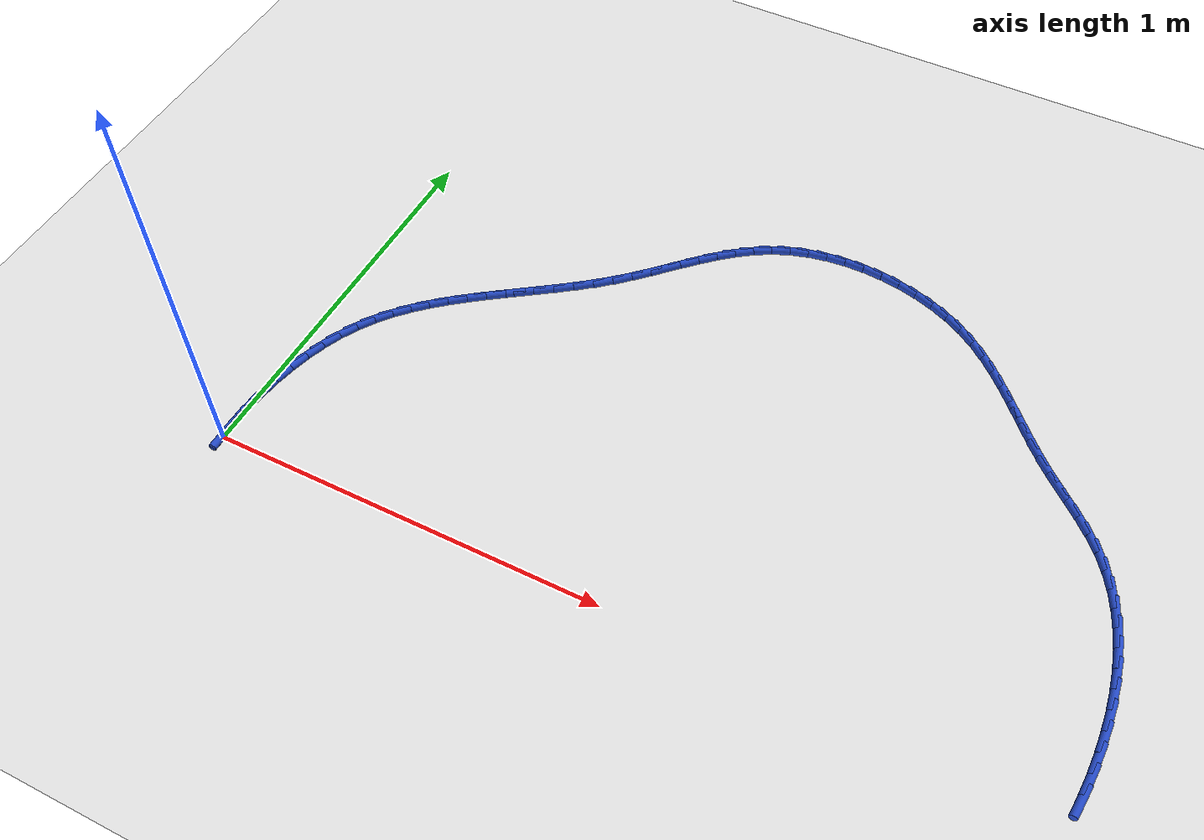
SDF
<sdf version="1.6">
 <world name="default">
  <model name="ground_plane">
   <static>1</static>
   <link name="link">
    <collision name="collision">
     <geometry><plane><normal>0 0 1</normal><size>100 100</size></plane></geometry>
     <surface><friction><ode><mu>100</mu><mu2>50</mu2></ode></friction></surface>
    </collision>
    <visual name="visual">
     <cast_shadows>0</cast_shadows>
     <geometry><plane><normal>0 0 1</normal><size>100 100</size></plane></geometry>
     <material>
      <script><uri>file://media/materials/scripts/gazebo.material</uri><name>Gazebo/WhiteGlow</name></script>
     </material>
    </visual>
   </link>
  </model>
  <model name="line">
   <link name="link_0">
    <pose>1.3877787807814457e-17 1.6653345369377348e-16 0.01 0 1.57 1.5703879840936825</pose>
    <collision name="collision">
     <geometry><cylinder><radius>0.01</radius><length>0.08</length></cylinder></geometry>
    </collision>
    <visual name="visual">
     <material>
      <script><name>Gazebo/Blue</name><uri>file://media/materials/scripts/gazebo.material</uri></script>
     </material>
     <geometry><cylinder><radius>0.01</radius><length>0.08</length></cylinder></geometry>
    </visual>
   </link>
   <link name="link_1">
    <pose>2.0461932362918987e-05 0.05010970237685566 0.01 0 1.57 1.5252319487551422</pose>
    <collision name="collision">
     <geometry><cylinder><radius>0.01</radius><length>0.08</length></cylinder></geometry>
    </collision>
    <visual name="visual">
     <material>
      <script><name>Gazebo/Blue</name><uri>file://media/materials/scripts/gazebo.material</uri></script>
     </material>
     <geometry><cylinder><radius>0.01</radius><length>0.08</length></cylinder></geometry>
    </visual>
   </link>
   <link name="link_2">
    <pose>0.002315027762263988 0.10043361292031516 0.01 0 1.57 1.4768614780469314</pose>
    <collision name="collision">
     <geometry><cylinder><radius>0.01</radius><length>0.08</length></cylinder></geometry>
    </collision>
    <visual name="visual">
     <material>
      <script><name>Gazebo/Blue</name><uri>file://media/materials/scripts/gazebo.material</uri></script>
     </material>
     <geometry><cylinder><radius>0.01</radius><length>0.08</length></cylinder></geometry>
    </visual>
   </link>
   <link name="link_3">
    <pose>0.007041752678469361 0.15060470815478336 0.01 0 1.57 1.4244827749581548</pose>
    <collision name="collision">
     <geometry><cylinder><radius>0.01</radius><length>0.08</length></cylinder></geometry>
    </collision>
    <visual name="visual">
     <material>
      <script><name>Gazebo/Blue</name><uri>file://media/materials/scripts/gazebo.material</uri></script>
     </material>
     <geometry><cylinder><radius>0.01</radius><length>0.08</length></cylinder></geometry>
    </visual>
   </link>
   <link name="link_4">
    <pose>0.014358691869745163 0.20025596460466466 0.01 0 1.57 1.3672498876681252</pose>
    <collision name="collision">
     <geometry><cylinder><radius>0.01</radius><length>0.08</length></cylinder></geometry>
    </collision>
    <visual name="visual">
     <material>
      <script><name>Gazebo/Blue</name><uri>file://media/materials/scripts/gazebo.material</uri></script>
     </material>
     <geometry><cylinder><radius>0.01</radius><length>0.08</length></cylinder></geometry>
    </visual>
   </link>
   <link name="link_5">
    <pose>0.02442390052485755 0.2490203587943638 0.01 0 1.57 1.3042676388788637</pose>
    <collision name="collision">
     <geometry><cylinder><radius>0.01</radius><length>0.08</length></cylinder></geometry>
    </collision>
    <visual name="visual">
     <material>
      <script><name>Gazebo/Blue</name><uri>file://media/materials/scripts/gazebo.material</uri></script>
     </material>
     <geometry><cylinder><radius>0.01</radius><length>0.08</length></cylinder></geometry>
    </visual>
   </link>
   <link name="link_6">
    <pose>0.03739543383257267 0.2965308672482853 0.01 0 1.57 1.2346155950224973</pose>
    <collision name="collision">
     <geometry><cylinder><radius>0.01</radius><length>0.08</length></cylinder></geometry>
    </collision>
    <visual name="visual">
     <material>
      <script><name>Gazebo/Blue</name><uri>file://media/materials/scripts/gazebo.material</uri></script>
     </material>
     <geometry><cylinder><radius>0.01</radius><length>0.08</length></cylinder></geometry>
    </visual>
   </link>
   <link name="link_7">
    <pose>0.05343134698165662 0.34242046649083346 0.01 0 1.57 1.1574041959296875</pose>
    <collision name="collision">
     <geometry><cylinder><radius>0.01</radius><length>0.08</length></cylinder></geometry>
    </collision>
    <visual name="visual">
     <material>
      <script><name>Gazebo/Blue</name><uri>file://media/materials/scripts/gazebo.material</uri></script>
     </material>
     <geometry><cylinder><radius>0.01</radius><length>0.08</length></cylinder></geometry>
    </visual>
   </link>
   <link name="link_8">
    <pose>0.0726896951608756 0.3863221330464132 0.01 0 1.57 1.0718764269249268</pose>
    <collision name="collision">
     <geometry><cylinder><radius>0.01</radius><length>0.08</length></cylinder></geometry>
    </collision>
    <visual name="visual">
     <material>
      <script><name>Gazebo/Blue</name><uri>file://media/materials/scripts/gazebo.material</uri></script>
     </material>
     <geometry><cylinder><radius>0.01</radius><length>0.08</length></cylinder></geometry>
    </visual>
   </link>
   <link name="link_9">
    <pose>0.09532853355899572 0.42786884343942905 0.01 0 1.57 0.9794280090093584</pose>
    <collision name="collision">
     <geometry><cylinder><radius>0.01</radius><length>0.08</length></cylinder></geometry>
    </collision>
    <visual name="visual">
     <material>
      <script><name>Gazebo/Blue</name><uri>file://media/materials/scripts/gazebo.material</uri></script>
     </material>
     <geometry><cylinder><radius>0.01</radius><length>0.08</length></cylinder></geometry>
    </visual>
   </link>
   <link name="link_10">
    <pose>0.12144964194261251 0.46676621261109913 0.01 0 1.57 0.8923825192492111</pose>
    <collision name="collision">
     <geometry><cylinder><radius>0.01</radius><length>0.08</length></cylinder></geometry>
    </collision>
    <visual name="visual">
     <material>
      <script><name>Gazebo/Blue</name><uri>file://media/materials/scripts/gazebo.material</uri></script>
     </material>
     <geometry><cylinder><radius>0.01</radius><length>0.08</length></cylinder></geometry>
    </visual>
   </link>
   <link name="link_11">
    <pose>0.15079946091751076 0.5031785153061151 0.01 0 1.57 0.8167372482739383</pose>
    <collision name="collision">
     <geometry><cylinder><radius>0.01</radius><length>0.08</length></cylinder></geometry>
    </collision>
    <visual name="visual">
     <material>
      <script><name>Gazebo/Blue</name><uri>file://media/materials/scripts/gazebo.material</uri></script>
     </material>
     <geometry><cylinder><radius>0.01</radius><length>0.08</length></cylinder></geometry>
    </visual>
   </link>
   <link name="link_12">
    <pose>0.1829861221882732 0.5374485507337933 0.01 0 1.57 0.7532143176928595</pose>
    <collision name="collision">
     <geometry><cylinder><radius>0.01</radius><length>0.08</length></cylinder></geometry>
    </collision>
    <visual name="visual">
     <material>
      <script><name>Gazebo/Blue</name><uri>file://media/materials/scripts/gazebo.material</uri></script>
     </material>
     <geometry><cylinder><radius>0.01</radius><length>0.08</length></cylinder></geometry>
    </visual>
   </link>
   <link name="link_13">
    <pose>0.21761744660018034 0.5699195193501528 0.01 0 1.57 0.7018589598342855</pose>
    <collision name="collision">
     <geometry><cylinder><radius>0.01</radius><length>0.08</length></cylinder></geometry>
    </collision>
    <visual name="visual">
     <material>
      <script><name>Gazebo/Blue</name><uri>file://media/materials/scripts/gazebo.material</uri></script>
     </material>
     <geometry><cylinder><radius>0.01</radius><length>0.08</length></cylinder></geometry>
    </visual>
   </link>
   <link name="link_14">
    <pose>0.2543012549985125 0.6009346216112119 0.01 0 1.57 0.6623294533921383</pose>
    <collision name="collision">
     <geometry><cylinder><radius>0.01</radius><length>0.08</length></cylinder></geometry>
    </collision>
    <visual name="visual">
     <material>
      <script><name>Gazebo/Blue</name><uri>file://media/materials/scripts/gazebo.material</uri></script>
     </material>
     <geometry><cylinder><radius>0.01</radius><length>0.08</length></cylinder></geometry>
    </visual>
   </link>
   <link name="link_15">
    <pose>0.2926453682285506 0.6308370579729903 0.01 0 1.57 0.6341263456896873</pose>
    <collision name="collision">
     <geometry><cylinder><radius>0.01</radius><length>0.08</length></cylinder></geometry>
    </collision>
    <visual name="visual">
     <material>
      <script><name>Gazebo/Blue</name><uri>file://media/materials/scripts/gazebo.material</uri></script>
     </material>
     <geometry><cylinder><radius>0.01</radius><length>0.08</length></cylinder></geometry>
    </visual>
   </link>
   <link name="link_16">
    <pose>0.33225760713557484 0.659970028891506 0.01 0 1.57 0.6167503019242502</pose>
    <collision name="collision">
     <geometry><cylinder><radius>0.01</radius><length>0.08</length></cylinder></geometry>
    </collision>
    <visual name="visual">
     <material>
      <script><name>Gazebo/Blue</name><uri>file://media/materials/scripts/gazebo.material</uri></script>
     </material>
     <geometry><cylinder><radius>0.01</radius><length>0.08</length></cylinder></geometry>
    </visual>
   </link>
   <link name="link_17">
    <pose>0.37274579256486573 0.6886767348227782 0.01 0 1.57 0.6097961670701354</pose>
    <collision name="collision">
     <geometry><cylinder><radius>0.01</radius><length>0.08</length></cylinder></geometry>
    </collision>
    <visual name="visual">
     <material>
      <script><name>Gazebo/Blue</name><uri>file://media/materials/scripts/gazebo.material</uri></script>
     </material>
     <geometry><cylinder><radius>0.01</radius><length>0.08</length></cylinder></geometry>
    </visual>
   </link>
   <link name="link_18">
    <pose>0.4137177453617037 0.7173003762228252 0.01 0 1.57 0.6129990291934921</pose>
    <collision name="collision">
     <geometry><cylinder><radius>0.01</radius><length>0.08</length></cylinder></geometry>
    </collision>
    <visual name="visual">
     <material>
      <script><name>Gazebo/Blue</name><uri>file://media/materials/scripts/gazebo.material</uri></script>
     </material>
     <geometry><cylinder><radius>0.01</radius><length>0.08</length></cylinder></geometry>
    </visual>
   </link>
   <link name="link_19">
    <pose>0.4547812863713694 0.7461841535476663 0.01 0 1.57 0.626245689992034</pose>
    <collision name="collision">
     <geometry><cylinder><radius>0.01</radius><length>0.08</length></cylinder></geometry>
    </collision>
    <visual name="visual">
     <material>
      <script><name>Gazebo/Blue</name><uri>file://media/materials/scripts/gazebo.material</uri></script>
     </material>
     <geometry><cylinder><radius>0.01</radius><length>0.08</length></cylinder></geometry>
    </visual>
   </link>
   <link name="link_20">
    <pose>0.49554423643914336 0.7756712672533201 0.01 0 1.57 0.6495589571418696</pose>
    <collision name="collision">
     <geometry><cylinder><radius>0.01</radius><length>0.08</length></cylinder></geometry>
    </collision>
    <visual name="visual">
     <material>
      <script><name>Gazebo/Blue</name><uri>file://media/materials/scripts/gazebo.material</uri></script>
     </material>
     <geometry><cylinder><radius>0.01</radius><length>0.08</length></cylinder></geometry>
    </visual>
   </link>
   <link name="link_21">
    <pose>0.5356144164103059 0.8061049177958057 0.01 0 1.57 0.6830560161059994</pose>
    <collision name="collision">
     <geometry><cylinder><radius>0.01</radius><length>0.08</length></cylinder></geometry>
    </collision>
    <visual name="visual">
     <material>
      <script><name>Gazebo/Blue</name><uri>file://media/materials/scripts/gazebo.material</uri></script>
     </material>
     <geometry><cylinder><radius>0.01</radius><length>0.08</length></cylinder></geometry>
    </visual>
   </link>
   <link name="link_22">
    <pose>0.5745996471301377 0.8378283056311415 0.01 0 1.57 0.7266561480733533</pose>
    <collision name="collision">
     <geometry><cylinder><radius>0.01</radius><length>0.08</length></cylinder></geometry>
    </collision>
    <visual name="visual">
     <material>
      <script><name>Gazebo/Blue</name><uri>file://media/materials/scripts/gazebo.material</uri></script>
     </material>
     <geometry><cylinder><radius>0.01</radius><length>0.08</length></cylinder></geometry>
    </visual>
   </link>
   <link name="link_23">
    <pose>0.6121148930624188 0.8711761181775799 0.01 0 1.57 0.7689574391367755</pose>
    <collision name="collision">
     <geometry><cylinder><radius>0.01</radius><length>0.08</length></cylinder></geometry>
    </collision>
    <visual name="visual">
     <material>
      <script><name>Gazebo/Blue</name><uri>file://media/materials/scripts/gazebo.material</uri></script>
     </material>
     <geometry><cylinder><radius>0.01</radius><length>0.08</length></cylinder></geometry>
    </visual>
   </link>
   <link name="link_24">
    <pose>0.6481457843085825 0.9060413212563961 0.01 0 1.57 0.7932088401228681</pose>
    <collision name="collision">
     <geometry><cylinder><radius>0.01</radius><length>0.08</length></cylinder></geometry>
    </collision>
    <visual name="visual">
     <material>
      <script><name>Gazebo/Blue</name><uri>file://media/materials/scripts/gazebo.material</uri></script>
     </material>
     <geometry><cylinder><radius>0.01</radius><length>0.08</length></cylinder></geometry>
    </visual>
   </link>
   <link name="link_25">
    <pose>0.6832214286226302 0.9416692193136815 0.01 0 1.57 0.7980828440920179</pose>
    <collision name="collision">
     <geometry><cylinder><radius>0.01</radius><length>0.08</length></cylinder></geometry>
    </collision>
    <visual name="visual">
     <material>
      <script><name>Gazebo/Blue</name><uri>file://media/materials/scripts/gazebo.material</uri></script>
     </material>
     <geometry><cylinder><radius>0.01</radius><length>0.08</length></cylinder></geometry>
    </visual>
   </link>
   <link name="link_26">
    <pose>0.7179142343964778 0.9772535155004892 0.01 0 1.57 0.783272555893107</pose>
    <collision name="collision">
     <geometry><cylinder><radius>0.01</radius><length>0.08</length></cylinder></geometry>
    </collision>
    <visual name="visual">
     <material>
      <script><name>Gazebo/Blue</name><uri>file://media/materials/scripts/gazebo.material</uri></script>
     </material>
     <geometry><cylinder><radius>0.01</radius><length>0.08</length></cylinder></geometry>
    </visual>
   </link>
   <link name="link_27">
    <pose>0.7527966100220406 1.0119879129678722 0.01 0 1.57 0.7480747511756202</pose>
    <collision name="collision">
     <geometry><cylinder><radius>0.01</radius><length>0.08</length></cylinder></geometry>
    </collision>
    <visual name="visual">
     <material>
      <script><name>Gazebo/Blue</name><uri>file://media/materials/scripts/gazebo.material</uri></script>
     </material>
     <geometry><cylinder><radius>0.01</radius><length>0.08</length></cylinder></geometry>
    </visual>
   </link>
   <link name="link_28">
    <pose>0.7884409638912347 1.0450661148668834 0.01 0 1.57 0.6915393473425997</pose>
    <collision name="collision">
     <geometry><cylinder><radius>0.01</radius><length>0.08</length></cylinder></geometry>
    </collision>
    <visual name="visual">
     <material>
      <script><name>Gazebo/Blue</name><uri>file://media/materials/scripts/gazebo.material</uri></script>
     </material>
     <geometry><cylinder><radius>0.01</radius><length>0.08</length></cylinder></geometry>
    </visual>
   </link>
   <link name="link_29">
    <pose>0.8254197043959755 1.075681824348575 0.01 0 1.57 0.6129153265700636</pose>
    <collision name="collision">
     <geometry><cylinder><radius>0.01</radius><length>0.08</length></cylinder></geometry>
    </collision>
    <visual name="visual">
     <material>
      <script><name>Gazebo/Blue</name><uri>file://media/materials/scripts/gazebo.material</uri></script>
     </material>
     <geometry><cylinder><radius>0.01</radius><length>0.08</length></cylinder></geometry>
    </visual>
   </link>
   <link name="link_30">
    <pose>0.8643052399281784 1.1030287445640006 0.01 0 1.57 0.5124660084475797</pose>
    <collision name="collision">
     <geometry><cylinder><radius>0.01</radius><length>0.08</length></cylinder></geometry>
    </collision>
    <visual name="visual">
     <material>
      <script><name>Gazebo/Blue</name><uri>file://media/materials/scripts/gazebo.material</uri></script>
     </material>
     <geometry><cylinder><radius>0.01</radius><length>0.08</length></cylinder></geometry>
    </visual>
   </link>
   <link name="link_31">
    <pose>0.9056699788797593 1.1263005786642126 0.01 0 1.57 0.39546776203038575</pose>
    <collision name="collision">
     <geometry><cylinder><radius>0.01</radius><length>0.08</length></cylinder></geometry>
    </collision>
    <visual name="visual">
     <material>
      <script><name>Gazebo/Blue</name><uri>file://media/materials/scripts/gazebo.material</uri></script>
     </material>
     <geometry><cylinder><radius>0.01</radius><length>0.08</length></cylinder></geometry>
    </visual>
   </link>
   <link name="link_32">
    <pose>0.9499613652537621 1.1447905053636087 0.01 0 1.57 0.2824120084130147</pose>
    <collision name="collision">
     <geometry><cylinder><radius>0.01</radius><length>0.08</length></cylinder></geometry>
    </collision>
    <visual name="visual">
     <material>
      <script><name>Gazebo/Blue</name><uri>file://media/materials/scripts/gazebo.material</uri></script>
     </material>
     <geometry><cylinder><radius>0.01</radius><length>0.08</length></cylinder></geometry>
    </visual>
   </link>
   <link name="link_33">
    <pose>0.9968629138664089 1.1583998149106054 0.01 0 1.57 0.179211980913879</pose>
    <collision name="collision">
     <geometry><cylinder><radius>0.01</radius><length>0.08</length></cylinder></geometry>
    </collision>
    <visual name="visual">
     <material>
      <script><name>Gazebo/Blue</name><uri>file://media/materials/scripts/gazebo.material</uri></script>
     </material>
     <geometry><cylinder><radius>0.01</radius><length>0.08</length></cylinder></geometry>
    </visual>
   </link>
   <link name="link_34">
    <pose>1.045769551238124 1.1672595228662337 0.01 0 1.57 0.08411582880588916</pose>
    <collision name="collision">
     <geometry><cylinder><radius>0.01</radius><length>0.08</length></cylinder></geometry>
    </collision>
    <visual name="visual">
     <material>
      <script><name>Gazebo/Blue</name><uri>file://media/materials/scripts/gazebo.material</uri></script>
     </material>
     <geometry><cylinder><radius>0.01</radius><length>0.08</length></cylinder></geometry>
    </visual>
   </link>
   <link name="link_35">
    <pose>1.0960756673500238 1.1715010718935994 0.01 0 1.57 -0.004797757914438935</pose>
    <collision name="collision">
     <geometry><cylinder><radius>0.01</radius><length>0.08</length></cylinder></geometry>
    </collision>
    <visual name="visual">
     <material>
      <script><name>Gazebo/Blue</name><uri>file://media/materials/scripts/gazebo.material</uri></script>
     </material>
     <geometry><cylinder><radius>0.01</radius><length>0.08</length></cylinder></geometry>
    </visual>
   </link>
   <link name="link_36">
    <pose>1.147175652183225 1.1712559046558095 0.01 0 1.57 -0.08945836000498049</pose>
    <collision name="collision">
     <geometry><cylinder><radius>0.01</radius><length>0.08</length></cylinder></geometry>
    </collision>
    <visual name="visual">
     <material>
      <script><name>Gazebo/Blue</name><uri>file://media/materials/scripts/gazebo.material</uri></script>
     </material>
     <geometry><cylinder><radius>0.01</radius><length>0.08</length></cylinder></geometry>
    </visual>
   </link>
   <link name="link_37">
    <pose>1.1984638957188445 1.1666554638159703 0.01 0 1.57 -0.17175498452302446</pose>
    <collision name="collision">
     <geometry><cylinder><radius>0.01</radius><length>0.08</length></cylinder></geometry>
    </collision>
    <visual name="visual">
     <material>
      <script><name>Gazebo/Blue</name><uri>file://media/materials/scripts/gazebo.material</uri></script>
     </material>
     <geometry><cylinder><radius>0.01</radius><length>0.08</length></cylinder></geometry>
    </visual>
   </link>
   <link name="link_38">
    <pose>1.249334787937998 1.157831192037188 0.01 0 1.57 -0.2535448102509184</pose>
    <collision name="collision">
     <geometry><cylinder><radius>0.01</radius><length>0.08</length></cylinder></geometry>
    </collision>
    <visual name="visual">
     <material>
      <script><name>Gazebo/Blue</name><uri>file://media/materials/scripts/gazebo.material</uri></script>
     </material>
     <geometry><cylinder><radius>0.01</radius><length>0.08</length></cylinder></geometry>
    </visual>
   </link>
   <link name="link_39">
    <pose>1.2991827188218024 1.14491453198257 0.01 0 1.57 -0.336690150724757</pose>
    <collision name="collision">
     <geometry><cylinder><radius>0.01</radius><length>0.08</length></cylinder></geometry>
    </collision>
    <visual name="visual">
     <material>
      <script><name>Gazebo/Blue</name><uri>file://media/materials/scripts/gazebo.material</uri></script>
     </material>
     <geometry><cylinder><radius>0.01</radius><length>0.08</length></cylinder></geometry>
    </visual>
   </link>
   <link name="link_40">
    <pose>1.3474020783513747 1.128036926315222 0.01 0 1.57 -0.42310306907898965</pose>
    <collision name="collision">
     <geometry><cylinder><radius>0.01</radius><length>0.08</length></cylinder></geometry>
    </collision>
    <visual name="visual">
     <material>
      <script><name>Gazebo/Blue</name><uri>file://media/materials/scripts/gazebo.material</uri></script>
     </material>
     <geometry><cylinder><radius>0.01</radius><length>0.08</length></cylinder></geometry>
    </visual>
   </link>
   <link name="link_41">
    <pose>1.3933872565078307 1.107329817698251 0.01 0 1.57 -0.514705143597147</pose>
    <collision name="collision">
     <geometry><cylinder><radius>0.01</radius><length>0.08</length></cylinder></geometry>
    </collision>
    <visual name="visual">
     <material>
      <script><name>Gazebo/Blue</name><uri>file://media/materials/scripts/gazebo.material</uri></script>
     </material>
     <geometry><cylinder><radius>0.01</radius><length>0.08</length></cylinder></geometry>
    </visual>
   </link>
   <link name="link_42">
    <pose>1.4365370466917582 1.0829263519689587 0.01 0 1.57 -0.60643084212509</pose>
    <collision name="collision">
     <geometry><cylinder><radius>0.01</radius><length>0.08</length></cylinder></geometry>
    </collision>
    <visual name="visual">
     <material>
      <script><name>Gazebo/Blue</name><uri>file://media/materials/scripts/gazebo.material</uri></script>
     </material>
     <geometry><cylinder><radius>0.01</radius><length>0.08</length></cylinder></geometry>
    </visual>
   </link>
   <link name="link_43">
    <pose>1.4766397573856311 1.055110333342923 0.01 0 1.57 -0.6852317478385442</pose>
    <collision name="collision">
     <geometry><cylinder><radius>0.01</radius><length>0.08</length></cylinder></geometry>
    </collision>
    <visual name="visual">
     <material>
      <script><name>Gazebo/Blue</name><uri>file://media/materials/scripts/gazebo.material</uri></script>
     </material>
     <geometry><cylinder><radius>0.01</radius><length>0.08</length></cylinder></geometry>
    </visual>
   </link>
   <link name="link_44">
    <pose>1.5141732620211437 1.024432279038108 0.01 0 1.57 -0.7481677094902304</pose>
    <collision name="collision">
     <geometry><cylinder><radius>0.01</radius><length>0.08</length></cylinder></geometry>
    </collision>
    <visual name="visual">
     <material>
      <script><name>Gazebo/Blue</name><uri>file://media/materials/scripts/gazebo.material</uri></script>
     </material>
     <geometry><cylinder><radius>0.01</radius><length>0.08</length></cylinder></geometry>
    </visual>
   </link>
   <link name="link_45">
    <pose>1.549686055335538 0.9914700214955859 0.01 0 1.57 -0.7945386288861598</pose>
    <collision name="collision">
     <geometry><cylinder><radius>0.01</radius><length>0.08</length></cylinder></geometry>
    </collision>
    <visual name="visual">
     <material>
      <script><name>Gazebo/Blue</name><uri>file://media/materials/scripts/gazebo.material</uri></script>
     </material>
     <geometry><cylinder><radius>0.01</radius><length>0.08</length></cylinder></geometry>
    </visual>
   </link>
   <link name="link_46">
    <pose>1.5837266320660597 0.9568013931564292 0.01 0 1.57 -0.824272132206903</pose>
    <collision name="collision">
     <geometry><cylinder><radius>0.01</radius><length>0.08</length></cylinder></geometry>
    </collision>
    <visual name="visual">
     <material>
      <script><name>Gazebo/Blue</name><uri>file://media/materials/scripts/gazebo.material</uri></script>
     </material>
     <geometry><cylinder><radius>0.01</radius><length>0.08</length></cylinder></geometry>
    </visual>
   </link>
   <link name="link_47">
    <pose>1.6168434869499513 0.9210042264617111 0.01 0 1.57 -0.8375475506481883</pose>
    <collision name="collision">
     <geometry><cylinder><radius>0.01</radius><length>0.08</length></cylinder></geometry>
    </collision>
    <visual name="visual">
     <material>
      <script><name>Gazebo/Blue</name><uri>file://media/materials/scripts/gazebo.material</uri></script>
     </material>
     <geometry><cylinder><radius>0.01</radius><length>0.08</length></cylinder></geometry>
    </visual>
   </link>
   <link name="link_48">
    <pose>1.649585114724456 0.8846563538525027 0.01 0 1.57 -0.834550700331224</pose>
    <collision name="collision">
     <geometry><cylinder><radius>0.01</radius><length>0.08</length></cylinder></geometry>
    </collision>
    <visual name="visual">
     <material>
      <script><name>Gazebo/Blue</name><uri>file://media/materials/scripts/gazebo.material</uri></script>
     </material>
     <geometry><cylinder><radius>0.01</radius><length>0.08</length></cylinder></geometry>
    </visual>
   </link>
   <link name="link_49">
    <pose>1.6825000101268188 0.8483356077698782 0.01 0 1.57 -0.8153683657946804</pose>
    <collision name="collision">
     <geometry><cylinder><radius>0.01</radius><length>0.08</length></cylinder></geometry>
    </collision>
    <visual name="visual">
     <material>
      <script><name>Gazebo/Blue</name><uri>file://media/materials/scripts/gazebo.material</uri></script>
     </material>
     <geometry><cylinder><radius>0.01</radius><length>0.08</length></cylinder></geometry>
    </visual>
   </link>
   <link name="link_50">
    <pose>1.716136667894282 0.8126198206549083 0.01 0 1.57 -0.7800877470952488</pose>
    <collision name="collision">
     <geometry><cylinder><radius>0.01</radius><length>0.08</length></cylinder></geometry>
    </collision>
    <visual name="visual">
     <material>
      <script><name>Gazebo/Blue</name><uri>file://media/materials/scripts/gazebo.material</uri></script>
     </material>
     <geometry><cylinder><radius>0.01</radius><length>0.08</length></cylinder></geometry>
    </visual>
   </link>
   <link name="link_51">
    <pose>1.7510408597299338 0.7780843856122343 0.01 0 1.57 -0.7417299932349543</pose>
    <collision name="collision">
     <geometry><cylinder><radius>0.01</radius><length>0.08</length></cylinder></geometry>
    </collision>
    <visual name="visual">
     <material>
      <script><name>Gazebo/Blue</name><uri>file://media/materials/scripts/gazebo.material</uri></script>
     </material>
     <geometry><cylinder><radius>0.01</radius><length>0.08</length></cylinder></geometry>
    </visual>
   </link>
   <link name="link_52">
    <pose>1.7872819232547235 0.7448778986710395 0.01 0 1.57 -0.7278646358349814</pose>
    <collision name="collision">
     <geometry><cylinder><radius>0.01</radius><length>0.08</length></cylinder></geometry>
    </collision>
    <visual name="visual">
     <material>
      <script><name>Gazebo/Blue</name><uri>file://media/materials/scripts/gazebo.material</uri></script>
     </material>
     <geometry><cylinder><radius>0.01</radius><length>0.08</length></cylinder></geometry>
    </visual>
   </link>
   <link name="link_53">
    <pose>1.8239119209292864 0.7122376649188343 0.01 0 1.57 -0.742079083661313</pose>
    <collision name="collision">
     <geometry><cylinder><radius>0.01</radius><length>0.08</length></cylinder></geometry>
    </collision>
    <visual name="visual">
     <material>
      <script><name>Gazebo/Blue</name><uri>file://media/materials/scripts/gazebo.material</uri></script>
     </material>
     <geometry><cylinder><radius>0.01</radius><length>0.08</length></cylinder></geometry>
    </visual>
   </link>
   <link name="link_54">
    <pose>1.8598520880321094 0.6792837924145709 0.01 0 1.57 -0.7850444020713876</pose>
    <collision name="collision">
     <geometry><cylinder><radius>0.01</radius><length>0.08</length></cylinder></geometry>
    </collision>
    <visual name="visual">
     <material>
      <script><name>Gazebo/Blue</name><uri>file://media/materials/scripts/gazebo.material</uri></script>
     </material>
     <geometry><cylinder><radius>0.01</radius><length>0.08</length></cylinder></geometry>
    </visual>
   </link>
   <link name="link_55">
    <pose>1.8940236598416815 0.6451363892172006 0.01 0 1.57 -0.857748095594117</pose>
    <collision name="collision">
     <geometry><cylinder><radius>0.01</radius><length>0.08</length></cylinder></geometry>
    </collision>
    <visual name="visual">
     <material>
      <script><name>Gazebo/Blue</name><uri>file://media/materials/scripts/gazebo.material</uri></script>
     </material>
     <geometry><cylinder><radius>0.01</radius><length>0.08</length></cylinder></geometry>
    </visual>
   </link>
   <link name="link_56">
    <pose>1.9253484853503648 0.6089161372248094 0.01 0 1.57 -0.9516864187576456</pose>
    <collision name="collision">
     <geometry><cylinder><radius>0.01</radius><length>0.08</length></cylinder></geometry>
    </collision>
    <visual name="visual">
     <material>
      <script><name>Gazebo/Blue</name><uri>file://media/materials/scripts/gazebo.material</uri></script>
     </material>
     <geometry><cylinder><radius>0.01</radius><length>0.08</length></cylinder></geometry>
    </visual>
   </link>
   <link name="link_57">
    <pose>1.9530562932289688 0.5700315941927345 0.01 0 1.57 -1.0429962687888408</pose>
    <collision name="collision">
     <geometry><cylinder><radius>0.01</radius><length>0.08</length></cylinder></geometry>
    </collision>
    <visual name="visual">
     <material>
      <script><name>Gazebo/Blue</name><uri>file://media/materials/scripts/gazebo.material</uri></script>
     </material>
     <geometry><cylinder><radius>0.01</radius><length>0.08</length></cylinder></geometry>
    </visual>
   </link>
   <link name="link_58">
    <pose>1.9771831179195656 0.5286452356609538 0.01 0 1.57 -1.1273394929139826</pose>
    <collision name="collision">
     <geometry><cylinder><radius>0.01</radius><length>0.08</length></cylinder></geometry>
    </collision>
    <visual name="visual">
     <material>
      <script><name>Gazebo/Blue</name><uri>file://media/materials/scripts/gazebo.material</uri></script>
     </material>
     <geometry><cylinder><radius>0.01</radius><length>0.08</length></cylinder></geometry>
    </visual>
   </link>
   <link name="link_59">
    <pose>1.9978953726609967 0.4850414448837725 0.01 0 1.57 -1.204580721750172</pose>
    <collision name="collision">
     <geometry><cylinder><radius>0.01</radius><length>0.08</length></cylinder></geometry>
    </collision>
    <visual name="visual">
     <material>
      <script><name>Gazebo/Blue</name><uri>file://media/materials/scripts/gazebo.material</uri></script>
     </material>
     <geometry><cylinder><radius>0.01</radius><length>0.08</length></cylinder></geometry>
    </visual>
   </link>
   <link name="link_60">
    <pose>2.015359470692105 0.43950460511549716 0.01 0 1.57 -1.2749375806439829</pose>
    <collision name="collision">
     <geometry><cylinder><radius>0.01</radius><length>0.08</length></cylinder></geometry>
    </collision>
    <visual name="visual">
     <material>
      <script><name>Gazebo/Blue</name><uri>file://media/materials/scripts/gazebo.material</uri></script>
     </material>
     <geometry><cylinder><radius>0.01</radius><length>0.08</length></cylinder></geometry>
    </visual>
   </link>
   <link name="link_61">
    <pose>2.02974182525173 0.392319099610433 0.01 0 1.57 -1.3388559705312604</pose>
    <collision name="collision">
     <geometry><cylinder><radius>0.01</radius><length>0.08</length></cylinder></geometry>
    </collision>
    <visual name="visual">
     <material>
      <script><name>Gazebo/Blue</name><uri>file://media/materials/scripts/gazebo.material</uri></script>
     </material>
     <geometry><cylinder><radius>0.01</radius><length>0.08</length></cylinder></geometry>
    </visual>
   </link>
   <link name="link_62">
    <pose>2.041208849578717 0.3437693116228865 0.01 0 1.57 -1.3969072855628595</pose>
    <collision name="collision">
     <geometry><cylinder><radius>0.01</radius><length>0.08</length></cylinder></geometry>
    </collision>
    <visual name="visual">
     <material>
      <script><name>Gazebo/Blue</name><uri>file://media/materials/scripts/gazebo.material</uri></script>
     </material>
     <geometry><cylinder><radius>0.01</radius><length>0.08</length></cylinder></geometry>
    </visual>
   </link>
   <link name="link_63">
    <pose>2.0499269569119045 0.29413962440716285 0.01 0 1.57 -1.4497142209687925</pose>
    <collision name="collision">
     <geometry><cylinder><radius>0.01</radius><length>0.08</length></cylinder></geometry>
    </collision>
    <visual name="visual">
     <material>
      <script><name>Gazebo/Blue</name><uri>file://media/materials/scripts/gazebo.material</uri></script>
     </material>
     <geometry><cylinder><radius>0.01</radius><length>0.08</length></cylinder></geometry>
    </visual>
   </link>
   <link name="link_64">
    <pose>2.0560625604901364 0.2437144212175688 0.01 0 1.57 -1.4979029227534368</pose>
    <collision name="collision">
     <geometry><cylinder><radius>0.01</radius><length>0.08</length></cylinder></geometry>
    </collision>
    <visual name="visual">
     <material>
      <script><name>Gazebo/Blue</name><uri>file://media/materials/scripts/gazebo.material</uri></script>
     </material>
     <geometry><cylinder><radius>0.01</radius><length>0.08</length></cylinder></geometry>
    </visual>
   </link>
   <link name="link_65">
    <pose>2.059782073552254 0.19277808530840967 0.01 0 1.57 -1.5420757832447567</pose>
    <collision name="collision">
     <geometry><cylinder><radius>0.01</radius><length>0.08</length></cylinder></geometry>
    </collision>
    <visual name="visual">
     <material>
      <script><name>Gazebo/Blue</name><uri>file://media/materials/scripts/gazebo.material</uri></script>
     </material>
     <geometry><cylinder><radius>0.01</radius><length>0.08</length></cylinder></geometry>
    </visual>
   </link>
   <link name="link_66">
    <pose>2.061251909337098 0.14161499993399096 0.01 0 1.57 1.5587937169576045</pose>
    <collision name="collision">
     <geometry><cylinder><radius>0.01</radius><length>0.08</length></cylinder></geometry>
    </collision>
    <visual name="visual">
     <material>
      <script><name>Gazebo/Blue</name><uri>file://media/materials/scripts/gazebo.material</uri></script>
     </material>
     <geometry><cylinder><radius>0.01</radius><length>0.08</length></cylinder></geometry>
    </visual>
   </link>
   <link name="link_67">
    <pose>2.060638481083512 0.09050954834861945 0.01 0 1.57 1.5209930240548928</pose>
    <collision name="collision">
     <geometry><cylinder><radius>0.01</radius><length>0.08</length></cylinder></geometry>
    </collision>
    <visual name="visual">
     <material>
      <script><name>Gazebo/Blue</name><uri>file://media/materials/scripts/gazebo.material</uri></script>
     </material>
     <geometry><cylinder><radius>0.01</radius><length>0.08</length></cylinder></geometry>
    </visual>
   </link>
   <link name="link_68">
    <pose>2.058108202030337 0.039746113806600036 0.01 0 1.57 1.4855934213183464</pose>
    <collision name="collision">
     <geometry><cylinder><radius>0.01</radius><length>0.08</length></cylinder></geometry>
    </collision>
    <visual name="visual">
     <material>
      <script><name>Gazebo/Blue</name><uri>file://media/materials/scripts/gazebo.material</uri></script>
     </material>
     <geometry><cylinder><radius>0.01</radius><length>0.08</length></cylinder></geometry>
    </visual>
   </link>
   <link name="link_140">
    <pose>2.0816681711721685e-17 0.0 0.01 0 1.57 -1.5706606107434145</pose>
    <collision name="collision">
     <geometry><cylinder><radius>0.01</radius><length>0.08</length></cylinder></geometry>
    </collision>
    <visual name="visual">
     <material>
      <script><name>Gazebo/Blue</name><uri>file://media/materials/scripts/gazebo.material</uri></script>
     </material>
     <geometry><cylinder><radius>0.01</radius><length>0.08</length></cylinder></geometry>
    </visual>
   </link>
   <link name="link_141">
    <pose>-6.809311818027977e-06 0.05017322344610517 0.01 0 1.57 -1.5706606107434145</pose>
    <collision name="collision">
     <geometry><cylinder><radius>0.01</radius><length>0.08</length></cylinder></geometry>
    </collision>
    <visual name="visual">
     <material>
      <script><name>Gazebo/Blue</name><uri>file://media/materials/scripts/gazebo.material</uri></script>
     </material>
     <geometry><cylinder><radius>0.01</radius><length>0.08</length></cylinder></geometry>
    </visual>
   </link>
  </model>
 </world>
</sdf>
